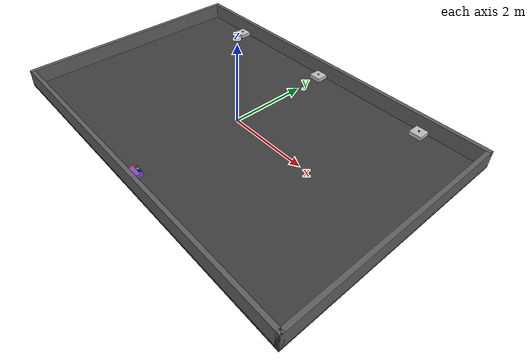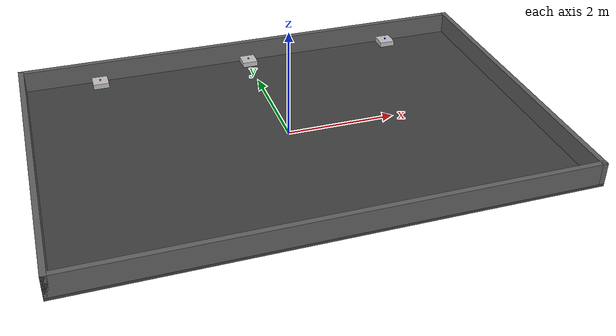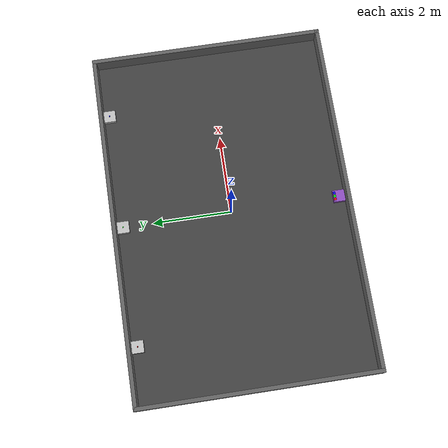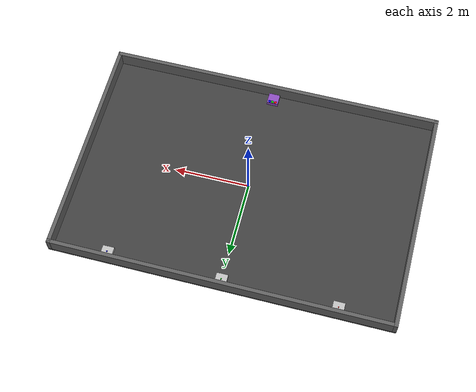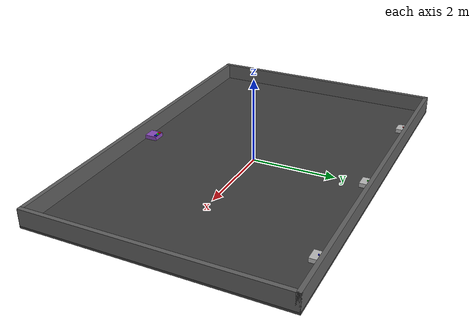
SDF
<?xml version="1.0"?>
<sdf version="1.9">
  <world name="robotics_arena">

    <gravity>0 0 -9.81</gravity>

    <physics name="1ms" type="ignored">
      <max_step_size>0.001</max_step_size>
      <real_time_factor>1.0</real_time_factor>
    </physics>

    <plugin filename="gz-sim-physics-system" name="gz::sim::systems::Physics"/>
    <plugin filename="gz-sim-user-commands-system" name="gz::sim::systems::UserCommands"/>
    <plugin filename="gz-sim-scene-broadcaster-system" name="gz::sim::systems::SceneBroadcaster"/>
    <plugin filename="gz-sim-sensors-system" name="gz::sim::systems::Sensors">
      <render_engine>ogre2</render_engine>
    </plugin>
    <plugin filename="gz-sim-imu-system" name="gz::sim::systems::Imu"/>
    <plugin filename="gz-sim-contact-system" name="gz::sim::systems::Contact"/>

    <light type="directional" name="sun">
      <cast_shadows>true</cast_shadows>
      <pose>0 0 50 0 0 0</pose>
      <diffuse>0.8 0.8 0.8 1</diffuse>
      <specular>0.2 0.2 0.2 1</specular>
      <direction>-0.5 0.1 -0.9</direction>
    </light>

    <!-- Floor -->
    <model name="arena_floor">
      <static>true</static>
      <pose>0 0 -0.025 0 0 0</pose>
      <link name="link">
        <collision name="collision">
          <geometry>
            <box>
              <size>9.0 6.0 0.05</size>
            </box>
          </geometry>
        </collision>
        <visual name="visual">
          <geometry>
            <box>
              <size>9.0 6.0 0.05</size>
            </box>
          </geometry>
          <material>
            <ambient>0.18 0.18 0.18 1</ambient>
            <diffuse>0.25 0.25 0.25 1</diffuse>
          </material>
        </visual>
      </link>
    </model>

    <!-- Left wall -->
    <model name="wall_left">
      <static>true</static>
      <pose>-4.45 0 0.20 0 0 0</pose>
      <link name="link">
        <collision name="collision">
          <geometry><box><size>0.10 6.0 0.40</size></box></geometry>
        </collision>
        <visual name="visual">
          <geometry><box><size>0.10 6.0 0.40</size></box></geometry>
          <material>
            <ambient>0.30 0.30 0.30 1</ambient>
            <diffuse>0.38 0.38 0.38 1</diffuse>
          </material>
        </visual>
      </link>
    </model>

    <!-- Right wall -->
    <model name="wall_right">
      <static>true</static>
      <pose>4.45 0 0.20 0 0 0</pose>
      <link name="link">
        <collision name="collision">
          <geometry><box><size>0.10 6.0 0.40</size></box></geometry>
        </collision>
        <visual name="visual">
          <geometry><box><size>0.10 6.0 0.40</size></box></geometry>
          <material>
            <ambient>0.30 0.30 0.30 1</ambient>
            <diffuse>0.38 0.38 0.38 1</diffuse>
          </material>
        </visual>
      </link>
    </model>

    <!-- Back wall: pickup platforms touch the inner face of this wall -->
    <model name="wall_back">
      <static>true</static>
      <pose>0 2.95 0.20 0 0 0</pose>
      <link name="link">
        <collision name="collision">
          <geometry><box><size>9.0 0.10 0.40</size></box></geometry>
        </collision>
        <visual name="visual">
          <geometry><box><size>9.0 0.10 0.40</size></box></geometry>
          <material>
            <ambient>0.30 0.30 0.30 1</ambient>
            <diffuse>0.38 0.38 0.38 1</diffuse>
          </material>
        </visual>
      </link>
    </model>

    <!-- Front wall: single continuous wall identical to back wall -->
    <model name="wall_front">
      <static>true</static>
      <pose>0 -2.95 0.20 0 0 0</pose>
      <link name="link">
        <collision name="collision">
          <geometry><box><size>9.0 0.10 0.40</size></box></geometry>
        </collision>
        <visual name="visual">
          <geometry><box><size>9.0 0.10 0.40</size></box></geometry>
          <material>
            <ambient>0.30 0.30 0.30 1</ambient>
            <diffuse>0.38 0.38 0.38 1</diffuse>
          </material>
        </visual>
      </link>
    </model>

    <!-- Pickup 1: Red -->
    <model name="pickup_point_1_red">
      <static>true</static>
      <pose>-3.00 2.75 0.05 0 0 0</pose>
      <link name="link">
        <collision name="collision">
          <geometry>
            <box>
              <size>0.30 0.30 0.10</size>
            </box>
          </geometry>
        </collision>

        <visual name="visual">
          <geometry>
            <box>
              <size>0.30 0.30 0.10</size>
            </box>
          </geometry>
          <material>
            <ambient>0.65 0.65 0.65 1</ambient>
            <diffuse>0.75 0.75 0.75 1</diffuse>
          </material>
        </visual>
      </link>
    </model>

    <model name="cube_red">
      <static>false</static>
      <!-- Cube center coincides with the platform center; bottom rests at Z=0.10. -->
      <pose>-3.00 2.75 0.1125 0 0 0</pose>

      <link name="link">
        <inertial>
          <mass>0.020</mass>
          <inertia>
            <ixx>0.00000208</ixx>
            <ixy>0.0</ixy>
            <ixz>0.0</ixz>
            <iyy>0.00000208</iyy>
            <iyz>0.0</iyz>
            <izz>0.00000208</izz>
          </inertia>
        </inertial>

        <collision name="collision">
          <geometry>
            <box>
              <size>0.025 0.025 0.025</size>
            </box>
          </geometry>
        </collision>

        <visual name="visual">
          <geometry>
            <box>
              <size>0.025 0.025 0.025</size>
            </box>
          </geometry>
          <material>
            <ambient>0.8 0.02 0.02 1</ambient>
            <diffuse>0.9 0.02 0.02 1</diffuse>
          </material>
        </visual>
      </link>
    </model>

    <!-- Pickup 2: Green -->
    <model name="pickup_point_2_green">
      <static>true</static>
      <pose>0 2.75 0.05 0 0 0</pose>
      <link name="link">
        <collision name="collision">
          <geometry>
            <box>
              <size>0.30 0.30 0.10</size>
            </box>
          </geometry>
        </collision>

        <visual name="visual">
          <geometry>
            <box>
              <size>0.30 0.30 0.10</size>
            </box>
          </geometry>
          <material>
            <ambient>0.65 0.65 0.65 1</ambient>
            <diffuse>0.75 0.75 0.75 1</diffuse>
          </material>
        </visual>
      </link>
    </model>

    <model name="cube_green">
      <static>false</static>
      <pose>0 2.75 0.1125 0 0 0</pose>

      <link name="link">
        <inertial>
          <mass>0.020</mass>
          <inertia>
            <ixx>0.00000208</ixx>
            <ixy>0.0</ixy>
            <ixz>0.0</ixz>
            <iyy>0.00000208</iyy>
            <iyz>0.0</iyz>
            <izz>0.00000208</izz>
          </inertia>
        </inertial>

        <collision name="collision">
          <geometry>
            <box>
              <size>0.025 0.025 0.025</size>
            </box>
          </geometry>
        </collision>

        <visual name="visual">
          <geometry>
            <box>
              <size>0.025 0.025 0.025</size>
            </box>
          </geometry>
          <material>
            <ambient>0.02 0.75 0.02 1</ambient>
            <diffuse>0.02 0.85 0.02 1</diffuse>
          </material>
        </visual>
      </link>
    </model>

    <!-- Pickup 3: Blue -->
    <model name="pickup_point_3_blue">
      <static>true</static>
      <pose>3.00 2.75 0.05 0 0 0</pose>
      <link name="link">
        <collision name="collision">
          <geometry>
            <box>
              <size>0.30 0.30 0.10</size>
            </box>
          </geometry>
        </collision>

        <visual name="visual">
          <geometry>
            <box>
              <size>0.30 0.30 0.10</size>
            </box>
          </geometry>
          <material>
            <ambient>0.65 0.65 0.65 1</ambient>
            <diffuse>0.75 0.75 0.75 1</diffuse>
          </material>
        </visual>
      </link>
    </model>

    <model name="cube_blue">
      <static>false</static>
      <pose>3.00 2.75 0.1125 0 0 0</pose>

      <link name="link">
        <inertial>
          <mass>0.020</mass>
          <inertia>
            <ixx>0.00000208</ixx>
            <ixy>0.0</ixy>
            <ixz>0.0</ixz>
            <iyy>0.00000208</iyy>
            <iyz>0.0</iyz>
            <izz>0.00000208</izz>
          </inertia>
        </inertial>

        <collision name="collision">
          <geometry>
            <box>
              <size>0.025 0.025 0.025</size>
            </box>
          </geometry>
        </collision>

        <visual name="visual">
          <geometry>
            <box>
              <size>0.025 0.025 0.025</size>
            </box>
          </geometry>
          <material>
            <ambient>0.02 0.02 0.85 1</ambient>
            <diffuse>0.02 0.02 0.95 1</diffuse>
          </material>
        </visual>
      </link>
    </model>

    <model name="placing_station">
      <static>true</static>
      <pose>0 -2.75 0.05 0 0 0</pose>
      <link name="link">
        <collision name="collision">
          <geometry><box><size>0.30 0.30 0.10</size></box></geometry>
        </collision>
        <visual name="visual">
          <geometry><box><size>0.30 0.30 0.10</size></box></geometry>
          <material>
            <ambient>0.45 0.25 0.65 1</ambient>
            <diffuse>0.55 0.30 0.75 1</diffuse>
          </material>
        </visual>
      </link>
    </model>

    <!-- Elevated placing platform: RED (1.5 cm thick, elevated above purple surface) -->
    <model name="placing_platform_red">
      <static>true</static>
      <pose>-0.08 -2.64 0.1075 0 0 0</pose>
      <link name="link">
        <collision name="collision">
          <geometry><box><size>0.06 0.06 0.015</size></box></geometry>
        </collision>
        <visual name="visual">
          <geometry><box><size>0.06 0.06 0.015</size></box></geometry>
          <material>
            <ambient>0.85 0.02 0.02 1</ambient>
            <diffuse>0.95 0.02 0.02 1</diffuse>
          </material>
        </visual>
      </link>
    </model>

    <!-- Elevated placing platform: GREEN (1.5 cm thick, elevated above purple surface) -->
    <model name="placing_platform_green">
      <static>true</static>
      <pose>0.00 -2.64 0.1075 0 0 0</pose>
      <link name="link">
        <collision name="collision">
          <geometry><box><size>0.06 0.06 0.015</size></box></geometry>
        </collision>
        <visual name="visual">
          <geometry><box><size>0.06 0.06 0.015</size></box></geometry>
          <material>
            <ambient>0.02 0.80 0.02 1</ambient>
            <diffuse>0.02 0.90 0.02 1</diffuse>
          </material>
        </visual>
      </link>
    </model>

    <!-- Elevated placing platform: BLUE (1.5 cm thick, elevated above purple surface) -->
    <model name="placing_platform_blue">
      <static>true</static>
      <pose>0.08 -2.64 0.1075 0 0 0</pose>
      <link name="link">
        <collision name="collision">
          <geometry><box><size>0.06 0.06 0.015</size></box></geometry>
        </collision>
        <visual name="visual">
          <geometry><box><size>0.06 0.06 0.015</size></box></geometry>
          <material>
            <ambient>0.02 0.02 0.85 1</ambient>
            <diffuse>0.02 0.02 0.95 1</diffuse>
          </material>
        </visual>
      </link>
    </model>

  </world>
</sdf>
